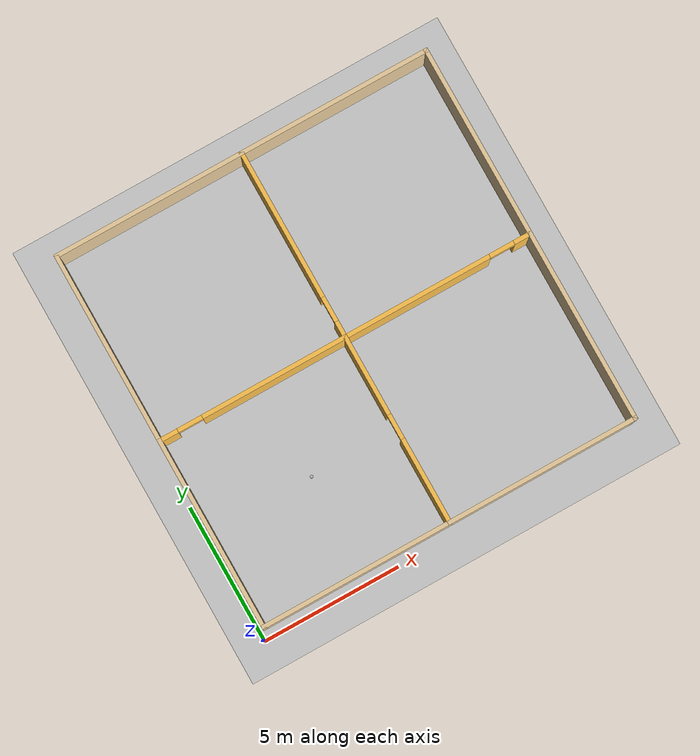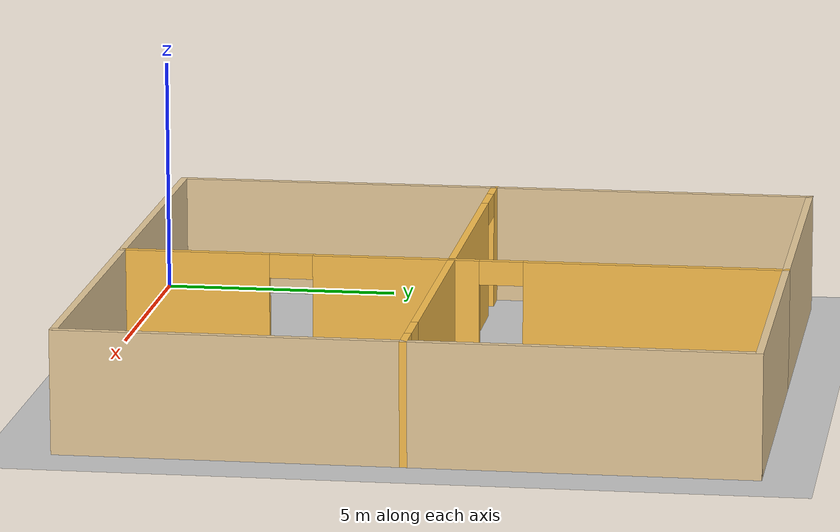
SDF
<sdf version="1.7">
 <world name="default">
  <light name="sun" type="directional">
   <pose>0 0 10 0 -0 0</pose>
   <diffuse>0.8 0.8 0.8 1</diffuse>
   <specular>0.2 0.2 0.2 1</specular>
   <attenuation>
    <range>1000</range>
    <constant>0.9</constant>
    <linear>0.01</linear>
    <quadratic>0.001</quadratic>
   </attenuation>
   <direction>-0.5 0.1 -0.9</direction>
   <spot><inner_angle>0</inner_angle><outer_angle>0</outer_angle><falloff>0</falloff></spot>
  </light>
  <gravity>0 0 -9.8</gravity>
  <magnetic_field>6e-06 2.3e-05 -4.2e-05</magnetic_field>
  <atmosphere type="adiabatic"/>
  <physics type="ode">
   <max_step_size>0.001</max_step_size>
   <real_time_factor>1</real_time_factor>
   <real_time_update_rate>1000</real_time_update_rate>
  </physics>
  <scene><ambient>0.4 0.4 0.4 1</ambient><background>0.7 0.7 0.7 1</background><shadows>1</shadows></scene>
  <audio><device>default</device></audio>
  <spherical_coordinates>
   <surface_model>EARTH_WGS84</surface_model>
   <latitude_deg>0</latitude_deg>
   <longitude_deg>0</longitude_deg>
   <elevation>0</elevation>
   <heading_deg>0</heading_deg>
  </spherical_coordinates>
  <model name="plane_3">
   <pose>7.07319 7.24129 0 0 -0 0</pose>
   <link name="Wall_14">
    <collision name="Wall_14_Collision">
     <geometry><box><size>7 0.15 2.5</size></box></geometry>
     <pose>0 0 1.25 0 -0 0</pose>
    </collision>
    <visual name="Wall_14_Visual">
     <pose>0 0 1.25 0 -0 0</pose>
     <geometry><box><size>7 0.15 2.5</size></box></geometry>
     <material>
      <script><uri>file://media/materials/scripts/gazebo.material</uri><name>Gazebo/Grey</name></script>
      <ambient>0.921569 0.807843 0.615686 1</ambient>
     </material>
     <meta><layer>0</layer></meta>
    </visual>
    <pose>-3.425 -6.85 0 0 -0 3.14159</pose>
   </link>
   <link name="Wall_26">
    <collision name="Wall_26_Collision">
     <geometry><box><size>7 0.15 2.5</size></box></geometry>
     <pose>0 0 1.25 0 -0 0</pose>
    </collision>
    <visual name="Wall_26_Visual">
     <pose>0 0 1.25 0 -0 0</pose>
     <geometry><box><size>7 0.15 2.5</size></box></geometry>
     <material>
      <script><uri>file://media/materials/scripts/gazebo.material</uri><name>Gazebo/Grey</name></script>
      <ambient>0.921569 0.807843 0.615686 1</ambient>
     </material>
     <meta><layer>0</layer></meta>
    </visual>
    <pose>-6.85 -3.425 0 0 -0 1.5708</pose>
   </link>
   <link name="Wall_27">
    <pose>-3.425 0 0 0 -0 0</pose>
    <visual name="Wall_27_Visual_0">
     <pose>-3.12884 0 1.25 0 -0 0</pose>
     <geometry><box><size>0.74232 0.15 2.5</size></box></geometry>
     <material>
      <script><uri>file://media/materials/scripts/gazebo.material</uri><name>Gazebo/Grey</name></script>
      <ambient>1 0.764706 0.305882 1</ambient>
     </material>
     <meta><layer>0</layer></meta>
    </visual>
    <collision name="Wall_27_Collision_0">
     <geometry><box><size>0.74232 0.15 2.5</size></box></geometry>
     <pose>-3.12884 0 1.25 0 -0 0</pose>
    </collision>
    <visual name="Wall_27_Visual_1">
     <pose>0.82116 0 1.25 0 -0 0</pose>
     <geometry><box><size>5.35768 0.15 2.5</size></box></geometry>
     <material>
      <script><uri>file://media/materials/scripts/gazebo.material</uri><name>Gazebo/Grey</name></script>
      <ambient>1 0.764706 0.305882 1</ambient>
     </material>
     <meta><layer>0</layer></meta>
    </visual>
    <collision name="Wall_27_Collision_1">
     <geometry><box><size>5.35768 0.15 2.5</size></box></geometry>
     <pose>0.82116 0 1.25 0 -0 0</pose>
    </collision>
    <visual name="Wall_27_Visual_2">
     <pose>-2.30768 0 2.25 0 -0 0</pose>
     <geometry><box><size>0.9 0.15 0.5</size></box></geometry>
     <material>
      <script><uri>file://media/materials/scripts/gazebo.material</uri><name>Gazebo/Grey</name></script>
      <ambient>1 0.764706 0.305882 1</ambient>
     </material>
     <meta><layer>0</layer></meta>
    </visual>
    <collision name="Wall_27_Collision_2">
     <geometry><box><size>0.9 0.15 0.5</size></box></geometry>
     <pose>-2.30768 0 2.25 0 -0 0</pose>
    </collision>
   </link>
   <link name="Wall_28">
    <pose>-0 -3.425 0 0 -0 -1.5708</pose>
    <visual name="Wall_28_Visual_0">
     <pose>-2.02668 0 1.25 0 -0 0</pose>
     <geometry><box><size>2.94663 0.15 2.5</size></box></geometry>
     <material>
      <script><uri>file://media/materials/scripts/gazebo.material</uri><name>Gazebo/Grey</name></script>
      <ambient>1 0.764706 0.305882 1</ambient>
     </material>
     <meta><layer>0</layer></meta>
    </visual>
    <collision name="Wall_28_Collision_0">
     <geometry><box><size>2.94663 0.15 2.5</size></box></geometry>
     <pose>-2.02668 0 1.25 0 -0 0</pose>
    </collision>
    <visual name="Wall_28_Visual_1">
     <pose>1.92332 0 1.25 0 -0 0</pose>
     <geometry><box><size>3.15337 0.15 2.5</size></box></geometry>
     <material>
      <script><uri>file://media/materials/scripts/gazebo.material</uri><name>Gazebo/Grey</name></script>
      <ambient>1 0.764706 0.305882 1</ambient>
     </material>
     <meta><layer>0</layer></meta>
    </visual>
    <collision name="Wall_28_Collision_1">
     <geometry><box><size>3.15337 0.15 2.5</size></box></geometry>
     <pose>1.92332 0 1.25 0 -0 0</pose>
    </collision>
    <visual name="Wall_28_Visual_2">
     <pose>-0.103367 0 2.25 0 -0 0</pose>
     <geometry><box><size>0.9 0.15 0.5</size></box></geometry>
     <material>
      <script><uri>file://media/materials/scripts/gazebo.material</uri><name>Gazebo/Grey</name></script>
      <ambient>1 0.764706 0.305882 1</ambient>
     </material>
     <meta><layer>0</layer></meta>
    </visual>
    <collision name="Wall_28_Collision_2">
     <geometry><box><size>0.9 0.15 0.5</size></box></geometry>
     <pose>-0.103367 0 2.25 0 -0 0</pose>
    </collision>
   </link>
   <link name="Wall_29">
    <collision name="Wall_29_Collision">
     <geometry><box><size>7 0.15 2.5</size></box></geometry>
     <pose>0 0 1.25 0 -0 0</pose>
    </collision>
    <visual name="Wall_29_Visual">
     <pose>0 0 1.25 0 -0 0</pose>
     <geometry><box><size>7 0.15 2.5</size></box></geometry>
     <material>
      <script><uri>file://media/materials/scripts/gazebo.material</uri><name>Gazebo/Grey</name></script>
      <ambient>0.921569 0.807843 0.615686 1</ambient>
     </material>
     <meta><layer>0</layer></meta>
    </visual>
    <pose>3.425 -6.85 0 0 -0 0</pose>
   </link>
   <link name="Wall_30">
    <collision name="Wall_30_Collision">
     <geometry><box><size>7 0.15 2.5</size></box></geometry>
     <pose>0 0 1.25 0 -0 0</pose>
    </collision>
    <visual name="Wall_30_Visual">
     <pose>0 0 1.25 0 -0 0</pose>
     <geometry><box><size>7 0.15 2.5</size></box></geometry>
     <material>
      <script><uri>file://media/materials/scripts/gazebo.material</uri><name>Gazebo/Grey</name></script>
      <ambient>0.921569 0.807843 0.615686 1</ambient>
     </material>
     <meta><layer>0</layer></meta>
    </visual>
    <pose>6.85 -3.425 0 0 -0 1.5708</pose>
   </link>
   <link name="Wall_31">
    <pose>3.425 0 0 0 -0 3.14159</pose>
    <visual name="Wall_31_Visual_0">
     <pose>-3.16028 0 1.25 0 -0 0</pose>
     <geometry><box><size>0.679447 0.15 2.5</size></box></geometry>
     <material>
      <script><uri>file://media/materials/scripts/gazebo.material</uri><name>Gazebo/Grey</name></script>
      <ambient>1 0.764706 0.305882 1</ambient>
     </material>
     <meta><layer>0</layer></meta>
    </visual>
    <collision name="Wall_31_Collision_0">
     <geometry><box><size>0.679447 0.15 2.5</size></box></geometry>
     <pose>-3.16028 0 1.25 0 -0 0</pose>
    </collision>
    <visual name="Wall_31_Visual_1">
     <pose>0.789724 0 1.25 0 -0 0</pose>
     <geometry><box><size>5.42055 0.15 2.5</size></box></geometry>
     <material>
      <script><uri>file://media/materials/scripts/gazebo.material</uri><name>Gazebo/Grey</name></script>
      <ambient>1 0.764706 0.305882 1</ambient>
     </material>
     <meta><layer>0</layer></meta>
    </visual>
    <collision name="Wall_31_Collision_1">
     <geometry><box><size>5.42055 0.15 2.5</size></box></geometry>
     <pose>0.789724 0 1.25 0 -0 0</pose>
    </collision>
    <visual name="Wall_31_Visual_2">
     <pose>-2.37055 0 2.25 0 -0 0</pose>
     <geometry><box><size>0.9 0.15 0.5</size></box></geometry>
     <material>
      <script><uri>file://media/materials/scripts/gazebo.material</uri><name>Gazebo/Grey</name></script>
      <ambient>1 0.764706 0.305882 1</ambient>
     </material>
     <meta><layer>0</layer></meta>
    </visual>
    <collision name="Wall_31_Collision_2">
     <geometry><box><size>0.9 0.15 0.5</size></box></geometry>
     <pose>-2.37055 0 2.25 0 -0 0</pose>
    </collision>
   </link>
   <link name="Wall_33">
    <collision name="Wall_33_Collision">
     <geometry><box><size>7 0.15 2.5</size></box></geometry>
     <pose>0 0 1.25 0 -0 0</pose>
    </collision>
    <visual name="Wall_33_Visual">
     <pose>0 0 1.25 0 -0 0</pose>
     <geometry><box><size>7 0.15 2.5</size></box></geometry>
     <material>
      <script><uri>file://media/materials/scripts/gazebo.material</uri><name>Gazebo/Grey</name></script>
      <ambient>0.921569 0.807843 0.615686 1</ambient>
     </material>
     <meta><layer>0</layer></meta>
    </visual>
    <pose>-6.85 3.425 0 0 -0 1.5708</pose>
   </link>
   <link name="Wall_34">
    <collision name="Wall_34_Collision">
     <geometry><box><size>7 0.15 2.5</size></box></geometry>
     <pose>0 0 1.25 0 -0 0</pose>
    </collision>
    <visual name="Wall_34_Visual">
     <pose>0 0 1.25 0 -0 0</pose>
     <geometry><box><size>7 0.15 2.5</size></box></geometry>
     <material>
      <script><uri>file://media/materials/scripts/gazebo.material</uri><name>Gazebo/Grey</name></script>
      <ambient>0.921569 0.807843 0.615686 1</ambient>
     </material>
     <meta><layer>0</layer></meta>
    </visual>
    <pose>-3.425 6.85 0 0 -0 0</pose>
   </link>
   <link name="Wall_35">
    <pose>-0 3.425 0 0 -0 -1.5708</pose>
    <visual name="Wall_35_Visual_0">
     <pose>-0.776775 0 1.25 0 -0 0</pose>
     <geometry><box><size>5.44645 0.15 2.5</size></box></geometry>
     <material>
      <script><uri>file://media/materials/scripts/gazebo.material</uri><name>Gazebo/Grey</name></script>
      <ambient>1 0.764706 0.305882 1</ambient>
     </material>
     <meta><layer>0</layer></meta>
    </visual>
    <collision name="Wall_35_Collision_0">
     <geometry><box><size>5.44645 0.15 2.5</size></box></geometry>
     <pose>-0.776775 0 1.25 0 -0 0</pose>
    </collision>
    <visual name="Wall_35_Visual_1">
     <pose>3.17322 0 1.25 0 -0 0</pose>
     <geometry><box><size>0.65355 0.15 2.5</size></box></geometry>
     <material>
      <script><uri>file://media/materials/scripts/gazebo.material</uri><name>Gazebo/Grey</name></script>
      <ambient>1 0.764706 0.305882 1</ambient>
     </material>
     <meta><layer>0</layer></meta>
    </visual>
    <collision name="Wall_35_Collision_1">
     <geometry><box><size>0.65355 0.15 2.5</size></box></geometry>
     <pose>3.17322 0 1.25 0 -0 0</pose>
    </collision>
    <visual name="Wall_35_Visual_2">
     <pose>2.39645 0 2.25 0 -0 0</pose>
     <geometry><box><size>0.9 0.15 0.5</size></box></geometry>
     <material>
      <script><uri>file://media/materials/scripts/gazebo.material</uri><name>Gazebo/Grey</name></script>
      <ambient>1 0.764706 0.305882 1</ambient>
     </material>
     <meta><layer>0</layer></meta>
    </visual>
    <collision name="Wall_35_Collision_2">
     <geometry><box><size>0.9 0.15 0.5</size></box></geometry>
     <pose>2.39645 0 2.25 0 -0 0</pose>
    </collision>
   </link>
   <link name="Wall_37">
    <collision name="Wall_37_Collision">
     <geometry><box><size>7 0.15 2.5</size></box></geometry>
     <pose>0 0 1.25 0 -0 0</pose>
    </collision>
    <visual name="Wall_37_Visual">
     <pose>0 0 1.25 0 -0 0</pose>
     <geometry><box><size>7 0.15 2.5</size></box></geometry>
     <material>
      <script><uri>file://media/materials/scripts/gazebo.material</uri><name>Gazebo/Grey</name></script>
      <ambient>0.921569 0.807843 0.615686 1</ambient>
     </material>
     <meta><layer>0</layer></meta>
    </visual>
    <pose>3.425 6.85 0 0 -0 0</pose>
   </link>
   <link name="Wall_38">
    <collision name="Wall_38_Collision">
     <geometry><box><size>7 0.15 2.5</size></box></geometry>
     <pose>0 0 1.25 0 -0 0</pose>
    </collision>
    <visual name="Wall_38_Visual">
     <pose>0 0 1.25 0 -0 0</pose>
     <geometry><box><size>7 0.15 2.5</size></box></geometry>
     <material>
      <script><uri>file://media/materials/scripts/gazebo.material</uri><name>Gazebo/Grey</name></script>
      <ambient>0.921569 0.807843 0.615686 1</ambient>
     </material>
     <meta><layer>0</layer></meta>
    </visual>
    <pose>6.85 3.425 0 0 -0 -1.5708</pose>
   </link>
   <static>1</static>
  </model>
  <light name="user_point_light_0" type="point">
   <pose>9.80373 16.4717 1 0 -0 0</pose>
   <diffuse>0.5 0.5 0.5 1</diffuse>
   <specular>0.1 0.1 0.1 1</specular>
   <attenuation>
    <range>20</range>
    <constant>0.5</constant>
    <linear>0.01</linear>
    <quadratic>0.001</quadratic>
   </attenuation>
   <cast_shadows>0</cast_shadows>
   <direction>0 0 -1</direction>
  </light>
  <model name="ground_plane">
   <static>1</static>
   <link name="link">
    <collision name="collision">
     <geometry><plane><normal>0 0 1</normal><size>100 100</size></plane></geometry>
     <surface>
      <contact><collide_bitmask>65535</collide_bitmask></contact>
      <friction><ode><mu>100</mu><mu2>50</mu2></ode></friction>
     </surface>
    </collision>
    <visual name="visual">
     <cast_shadows>0</cast_shadows>
     <geometry><plane><normal>0 0 1</normal><size>100 100</size></plane></geometry>
     <material>
      <script><uri>file://media/materials/scripts/gazebo.material</uri><name>Gazebo/Grey</name></script>
     </material>
    </visual>
   </link>
  </model>
  <model name="beer">
   <link name="link">
    <pose>0 0 0.115 0 -0 0</pose>
    <inertial>
     <mass>0.39</mass>
     <inertia><ixx>0.00058</ixx><ixy>0</ixy><ixz>0</ixz><iyy>0.00058</iyy><iyz>0</iyz><izz>0.00019</izz></inertia>
    </inertial>
    <collision name="collision">
     <geometry><cylinder><radius>0.055</radius><length>0.23</length></cylinder></geometry>
    </collision>
    <visual name="visual">
     <geometry><cylinder><radius>0.055</radius><length>0.23</length></cylinder></geometry>
     <material>
      <script>
       <uri>model://beer/materials/scripts</uri>
       <uri>model://beer/materials/textures</uri>
       <name>Beer/Diffuse</name>
      </script>
     </material>
    </visual>
   </link>
   <pose>3.95615 3.95019 -2e-06 1e-06 0 -7e-06</pose>
  </model>
 </world>
</sdf>
